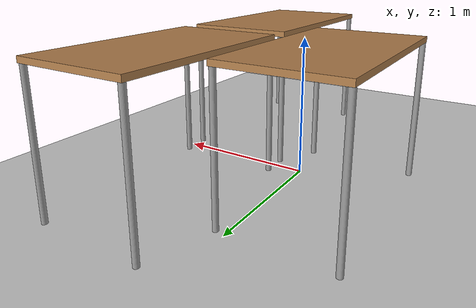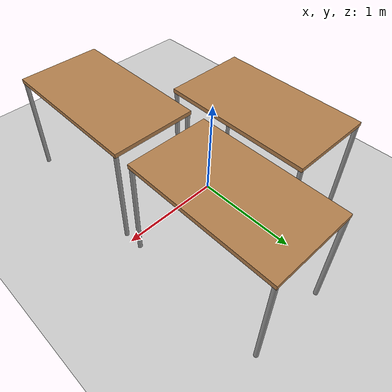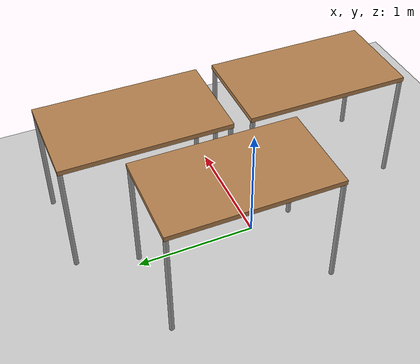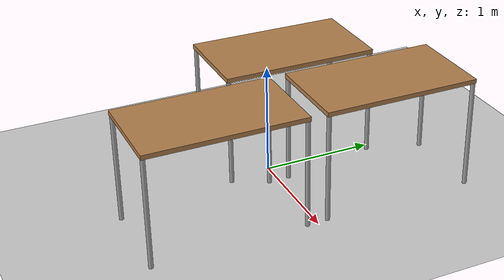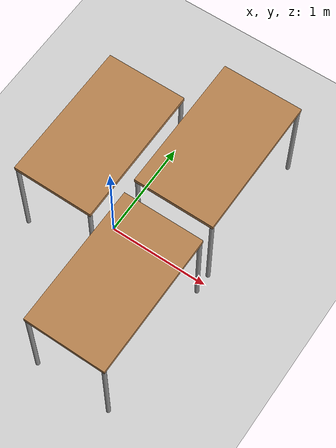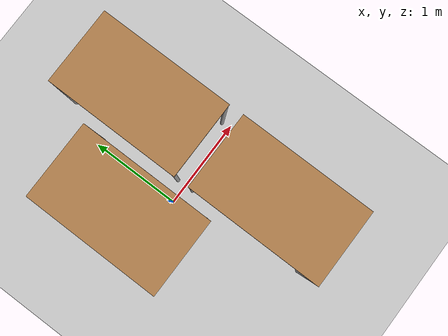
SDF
<sdf version="1.6">
 <world name="default">
  <light name="sun" type="directional">
   <pose>0 0 10 0 -0 0</pose>
   <diffuse>0.8 0.8 0.8 1</diffuse>
   <specular>0.1 0.1 0.1 1</specular>
   <attenuation>
    <range>1000</range>
    <constant>0.9</constant>
    <linear>0.01</linear>
    <quadratic>0.001</quadratic>
   </attenuation>
   <direction>-0.5 0.5 -1</direction>
  </light>
  <model name="ground_plane">
   <static>1</static>
   <link name="link">
    <collision name="collision">
     <geometry><plane><normal>0 0 1</normal><size>100 100</size></plane></geometry>
     <surface><friction><ode><mu>100</mu><mu2>50</mu2></ode></friction></surface>
    </collision>
    <visual name="visual">
     <cast_shadows>0</cast_shadows>
     <geometry><plane><normal>0 0 1</normal><size>100 100</size></plane></geometry>
     <material>
      <script><uri>file://media/materials/scripts/gazebo.material</uri><name>Gazebo/Grey</name></script>
     </material>
    </visual>
   </link>
  </model>
  <gravity>0 0 -9.8</gravity>
  <magnetic_field>6e-06 2.3e-05 -4.2e-05</magnetic_field>
  <atmosphere type="adiabatic"/>
  <physics name="default_physics" default="0" type="ode">
   <max_step_size>0.001</max_step_size>
   <real_time_factor>1</real_time_factor>
   <real_time_update_rate>1000</real_time_update_rate>
  </physics>
  <scene><ambient>0.4 0.4 0.4 1</ambient><background>0.7 0.7 0.7 1</background><shadows>1</shadows></scene>
  <spherical_coordinates>
   <surface_model>EARTH_WGS84</surface_model>
   <latitude_deg>0</latitude_deg>
   <longitude_deg>0</longitude_deg>
   <elevation>0</elevation>
   <heading_deg>0</heading_deg>
  </spherical_coordinates>
  <model name="table-heavy_3">
   <link name="link">
    <inertial>
     <inertia><ixx>0</ixx><ixy>0</ixy><ixz>0</ixz><iyy>0</iyy><iyz>0</iyz><izz>0</izz></inertia>
     <mass>100</mass>
    </inertial>
    <visual name="visual1">
     <pose>0 0 1 0 -0 0</pose>
     <geometry><box><size>1.4 0.8 0.04</size></box></geometry>
     <material>
      <script><uri>file://media/materials/scripts/gazebo.material</uri><name>Gazebo/Wood</name></script>
      <ambient>1 1 1 1</ambient>
      <diffuse>1 1 1 1</diffuse>
      <specular>0.2 0.2 0.2 1</specular>
      <emissive>0 0 0 1</emissive>
      <shader type="vertex"><normal_map>__default__</normal_map></shader>
     </material>
    </visual>
    <visual name="front_left_leg">
     <pose>0.68 0.38 0.5 0 -0 0</pose>
     <geometry><cylinder><radius>0.02</radius><length>1</length></cylinder></geometry>
     <material>
      <script><uri>file://media/materials/scripts/gazebo.material</uri><name>Gazebo/Grey</name></script>
      <ambient>0.3 0.3 0.3 1</ambient>
      <diffuse>0.7 0.7 0.7 1</diffuse>
      <specular>0.01 0.01 0.01 1</specular>
      <emissive>0 0 0 1</emissive>
      <shader type="vertex"><normal_map>__default__</normal_map></shader>
     </material>
    </visual>
    <visual name="front_right_leg">
     <pose>0.68 -0.38 0.5 0 -0 0</pose>
     <geometry><cylinder><radius>0.02</radius><length>1</length></cylinder></geometry>
     <material>
      <script><uri>file://media/materials/scripts/gazebo.material</uri><name>Gazebo/Grey</name></script>
      <ambient>0.3 0.3 0.3 1</ambient>
      <diffuse>0.7 0.7 0.7 1</diffuse>
      <specular>0.01 0.01 0.01 1</specular>
      <emissive>0 0 0 1</emissive>
      <shader type="vertex"><normal_map>__default__</normal_map></shader>
     </material>
    </visual>
    <visual name="back_right_leg">
     <pose>-0.68 -0.38 0.5 0 -0 0</pose>
     <geometry><cylinder><radius>0.02</radius><length>1</length></cylinder></geometry>
     <material>
      <script><uri>file://media/materials/scripts/gazebo.material</uri><name>Gazebo/Grey</name></script>
      <ambient>0.3 0.3 0.3 1</ambient>
      <diffuse>0.7 0.7 0.7 1</diffuse>
      <specular>0.01 0.01 0.01 1</specular>
      <emissive>0 0 0 1</emissive>
      <shader type="vertex"><normal_map>__default__</normal_map></shader>
     </material>
    </visual>
    <visual name="back_left_leg">
     <pose>-0.68 0.38 0.5 0 -0 0</pose>
     <geometry><cylinder><radius>0.02</radius><length>1</length></cylinder></geometry>
     <material>
      <script><uri>file://media/materials/scripts/gazebo.material</uri><name>Gazebo/Grey</name></script>
      <ambient>0.3 0.3 0.3 1</ambient>
      <diffuse>0.7 0.7 0.7 1</diffuse>
      <specular>0.01 0.01 0.01 1</specular>
      <emissive>0 0 0 1</emissive>
      <shader type="vertex"><normal_map>__default__</normal_map></shader>
     </material>
    </visual>
    <collision name="surface">
     <pose>0 0 1 0 -0 0</pose>
     <geometry><box><size>1.5 0.8 0.03</size></box></geometry>
     <surface>
      <friction>
       <ode><mu>0.6</mu><mu2>0.6</mu2><fdir1>0 0 0</fdir1><slip1>0</slip1><slip2>0</slip2></ode>
       <torsional>
        <coefficient>1</coefficient>
        <patch_radius>0</patch_radius>
        <surface_radius>0</surface_radius>
        <use_patch_radius>1</use_patch_radius>
        <ode><slip>0</slip></ode>
       </torsional>
      </friction>
      <bounce><restitution_coefficient>0</restitution_coefficient><threshold>1e+06</threshold></bounce>
      <contact>
       <collide_without_contact>0</collide_without_contact>
       <collide_without_contact_bitmask>1</collide_without_contact_bitmask>
       <collide_bitmask>1</collide_bitmask>
       <ode>
        <soft_cfm>0</soft_cfm>
        <soft_erp>0.2</soft_erp>
        <kp>1e+13</kp>
        <kd>1</kd>
        <max_vel>0.01</max_vel>
        <min_depth>0</min_depth>
       </ode>
       <bullet>
        <split_impulse>1</split_impulse>
        <split_impulse_penetration_threshold>-0.01</split_impulse_penetration_threshold>
        <soft_cfm>0</soft_cfm>
        <soft_erp>0.2</soft_erp>
        <kp>1e+13</kp>
        <kd>1</kd>
       </bullet>
      </contact>
     </surface>
    </collision>
    <collision name="front_left_leg">
     <pose>0.68 0.38 0.5 0 -0 0</pose>
     <geometry><cylinder><radius>0.02</radius><length>1</length></cylinder></geometry>
     <surface>
      <friction>
       <ode><mu>1</mu><mu2>1</mu2><fdir1>0 0 0</fdir1><slip1>0</slip1><slip2>0</slip2></ode>
       <torsional>
        <coefficient>1</coefficient>
        <patch_radius>0</patch_radius>
        <surface_radius>0</surface_radius>
        <use_patch_radius>1</use_patch_radius>
        <ode><slip>0</slip></ode>
       </torsional>
      </friction>
      <bounce><restitution_coefficient>0</restitution_coefficient><threshold>1e+06</threshold></bounce>
      <contact>
       <collide_without_contact>0</collide_without_contact>
       <collide_without_contact_bitmask>1</collide_without_contact_bitmask>
       <collide_bitmask>1</collide_bitmask>
       <ode>
        <soft_cfm>0</soft_cfm>
        <soft_erp>0.2</soft_erp>
        <kp>1e+13</kp>
        <kd>1</kd>
        <max_vel>0.01</max_vel>
        <min_depth>0</min_depth>
       </ode>
       <bullet>
        <split_impulse>1</split_impulse>
        <split_impulse_penetration_threshold>-0.01</split_impulse_penetration_threshold>
        <soft_cfm>0</soft_cfm>
        <soft_erp>0.2</soft_erp>
        <kp>1e+13</kp>
        <kd>1</kd>
       </bullet>
      </contact>
     </surface>
    </collision>
    <collision name="front_right_leg">
     <pose>0.68 -0.38 0.5 0 -0 0</pose>
     <geometry><cylinder><radius>0.02</radius><length>1</length></cylinder></geometry>
     <surface>
      <friction>
       <ode><mu>1</mu><mu2>1</mu2><fdir1>0 0 0</fdir1><slip1>0</slip1><slip2>0</slip2></ode>
       <torsional>
        <coefficient>1</coefficient>
        <patch_radius>0</patch_radius>
        <surface_radius>0</surface_radius>
        <use_patch_radius>1</use_patch_radius>
        <ode><slip>0</slip></ode>
       </torsional>
      </friction>
      <bounce><restitution_coefficient>0</restitution_coefficient><threshold>1e+06</threshold></bounce>
      <contact>
       <collide_without_contact>0</collide_without_contact>
       <collide_without_contact_bitmask>1</collide_without_contact_bitmask>
       <collide_bitmask>1</collide_bitmask>
       <ode>
        <soft_cfm>0</soft_cfm>
        <soft_erp>0.2</soft_erp>
        <kp>1e+13</kp>
        <kd>1</kd>
        <max_vel>0.01</max_vel>
        <min_depth>0</min_depth>
       </ode>
       <bullet>
        <split_impulse>1</split_impulse>
        <split_impulse_penetration_threshold>-0.01</split_impulse_penetration_threshold>
        <soft_cfm>0</soft_cfm>
        <soft_erp>0.2</soft_erp>
        <kp>1e+13</kp>
        <kd>1</kd>
       </bullet>
      </contact>
     </surface>
    </collision>
    <collision name="back_left_leg">
     <pose>-0.68 0.38 0.5 0 -0 0</pose>
     <geometry><cylinder><radius>0.02</radius><length>1</length></cylinder></geometry>
     <surface>
      <friction>
       <ode><mu>1</mu><mu2>1</mu2><fdir1>0 0 0</fdir1><slip1>0</slip1><slip2>0</slip2></ode>
       <torsional>
        <coefficient>1</coefficient>
        <patch_radius>0</patch_radius>
        <surface_radius>0</surface_radius>
        <use_patch_radius>1</use_patch_radius>
        <ode><slip>0</slip></ode>
       </torsional>
      </friction>
      <bounce><restitution_coefficient>0</restitution_coefficient><threshold>1e+06</threshold></bounce>
      <contact>
       <collide_without_contact>0</collide_without_contact>
       <collide_without_contact_bitmask>1</collide_without_contact_bitmask>
       <collide_bitmask>1</collide_bitmask>
       <ode>
        <soft_cfm>0</soft_cfm>
        <soft_erp>0.2</soft_erp>
        <kp>1e+13</kp>
        <kd>1</kd>
        <max_vel>0.01</max_vel>
        <min_depth>0</min_depth>
       </ode>
       <bullet>
        <split_impulse>1</split_impulse>
        <split_impulse_penetration_threshold>-0.01</split_impulse_penetration_threshold>
        <soft_cfm>0</soft_cfm>
        <soft_erp>0.2</soft_erp>
        <kp>1e+13</kp>
        <kd>1</kd>
       </bullet>
      </contact>
     </surface>
    </collision>
    <collision name="back_right_leg">
     <pose>-0.68 -0.38 0.5 0 -0 0</pose>
     <geometry><cylinder><radius>0.02</radius><length>1</length></cylinder></geometry>
     <surface>
      <friction>
       <ode><mu>1</mu><mu2>1</mu2><fdir1>0 0 0</fdir1><slip1>0</slip1><slip2>0</slip2></ode>
       <torsional>
        <coefficient>1</coefficient>
        <patch_radius>0</patch_radius>
        <surface_radius>0</surface_radius>
        <use_patch_radius>1</use_patch_radius>
        <ode><slip>0</slip></ode>
       </torsional>
      </friction>
      <bounce><restitution_coefficient>0</restitution_coefficient><threshold>1e+06</threshold></bounce>
      <contact>
       <collide_without_contact>0</collide_without_contact>
       <collide_without_contact_bitmask>1</collide_without_contact_bitmask>
       <collide_bitmask>1</collide_bitmask>
       <ode>
        <soft_cfm>0</soft_cfm>
        <soft_erp>0.2</soft_erp>
        <kp>1e+13</kp>
        <kd>1</kd>
        <max_vel>0.01</max_vel>
        <min_depth>0</min_depth>
       </ode>
       <bullet>
        <split_impulse>1</split_impulse>
        <split_impulse_penetration_threshold>-0.01</split_impulse_penetration_threshold>
        <soft_cfm>0</soft_cfm>
        <soft_erp>0.2</soft_erp>
        <kp>1e+13</kp>
        <kd>1</kd>
       </bullet>
      </contact>
     </surface>
    </collision>
   </link>
   <static>0</static>
   <pose>0.592698 -0.768492 -2e-06 0 -4e-06 -1.5761</pose>
  </model>
  <model name="table-heavy_3_clone">
   <link name="link">
    <inertial>
     <inertia><ixx>0</ixx><ixy>0</ixy><ixz>0</ixz><iyy>0</iyy><iyz>0</iyz><izz>0</izz></inertia>
     <mass>100</mass>
    </inertial>
    <visual name="visual1">
     <pose>0 0 1 0 -0 0</pose>
     <geometry><box><size>1.4 0.8 0.04</size></box></geometry>
     <material>
      <script><uri>file://media/materials/scripts/gazebo.material</uri><name>Gazebo/Wood</name></script>
      <ambient>1 1 1 1</ambient>
      <diffuse>1 1 1 1</diffuse>
      <specular>0.2 0.2 0.2 1</specular>
      <emissive>0 0 0 1</emissive>
      <shader type="vertex"><normal_map>__default__</normal_map></shader>
     </material>
    </visual>
    <visual name="front_left_leg">
     <pose>0.68 0.38 0.5 0 -0 0</pose>
     <geometry><cylinder><radius>0.02</radius><length>1</length></cylinder></geometry>
     <material>
      <script><uri>file://media/materials/scripts/gazebo.material</uri><name>Gazebo/Grey</name></script>
      <ambient>0.3 0.3 0.3 1</ambient>
      <diffuse>0.7 0.7 0.7 1</diffuse>
      <specular>0.01 0.01 0.01 1</specular>
      <emissive>0 0 0 1</emissive>
      <shader type="vertex"><normal_map>__default__</normal_map></shader>
     </material>
    </visual>
    <visual name="front_right_leg">
     <pose>0.68 -0.38 0.5 0 -0 0</pose>
     <geometry><cylinder><radius>0.02</radius><length>1</length></cylinder></geometry>
     <material>
      <script><uri>file://media/materials/scripts/gazebo.material</uri><name>Gazebo/Grey</name></script>
      <ambient>0.3 0.3 0.3 1</ambient>
      <diffuse>0.7 0.7 0.7 1</diffuse>
      <specular>0.01 0.01 0.01 1</specular>
      <emissive>0 0 0 1</emissive>
      <shader type="vertex"><normal_map>__default__</normal_map></shader>
     </material>
    </visual>
    <visual name="back_right_leg">
     <pose>-0.68 -0.38 0.5 0 -0 0</pose>
     <geometry><cylinder><radius>0.02</radius><length>1</length></cylinder></geometry>
     <material>
      <script><uri>file://media/materials/scripts/gazebo.material</uri><name>Gazebo/Grey</name></script>
      <ambient>0.3 0.3 0.3 1</ambient>
      <diffuse>0.7 0.7 0.7 1</diffuse>
      <specular>0.01 0.01 0.01 1</specular>
      <emissive>0 0 0 1</emissive>
      <shader type="vertex"><normal_map>__default__</normal_map></shader>
     </material>
    </visual>
    <visual name="back_left_leg">
     <pose>-0.68 0.38 0.5 0 -0 0</pose>
     <geometry><cylinder><radius>0.02</radius><length>1</length></cylinder></geometry>
     <material>
      <script><uri>file://media/materials/scripts/gazebo.material</uri><name>Gazebo/Grey</name></script>
      <ambient>0.3 0.3 0.3 1</ambient>
      <diffuse>0.7 0.7 0.7 1</diffuse>
      <specular>0.01 0.01 0.01 1</specular>
      <emissive>0 0 0 1</emissive>
      <shader type="vertex"><normal_map>__default__</normal_map></shader>
     </material>
    </visual>
    <collision name="surface">
     <pose>0 0 1 0 -0 0</pose>
     <geometry><box><size>1.5 0.8 0.03</size></box></geometry>
     <surface>
      <friction>
       <ode><mu>0.6</mu><mu2>0.6</mu2><fdir1>0 0 0</fdir1><slip1>0</slip1><slip2>0</slip2></ode>
       <torsional>
        <coefficient>1</coefficient>
        <patch_radius>0</patch_radius>
        <surface_radius>0</surface_radius>
        <use_patch_radius>1</use_patch_radius>
        <ode><slip>0</slip></ode>
       </torsional>
      </friction>
      <bounce><restitution_coefficient>0</restitution_coefficient><threshold>1e+06</threshold></bounce>
      <contact>
       <collide_without_contact>0</collide_without_contact>
       <collide_without_contact_bitmask>1</collide_without_contact_bitmask>
       <collide_bitmask>1</collide_bitmask>
       <ode>
        <soft_cfm>0</soft_cfm>
        <soft_erp>0.2</soft_erp>
        <kp>1e+13</kp>
        <kd>1</kd>
        <max_vel>0.01</max_vel>
        <min_depth>0</min_depth>
       </ode>
       <bullet>
        <split_impulse>1</split_impulse>
        <split_impulse_penetration_threshold>-0.01</split_impulse_penetration_threshold>
        <soft_cfm>0</soft_cfm>
        <soft_erp>0.2</soft_erp>
        <kp>1e+13</kp>
        <kd>1</kd>
       </bullet>
      </contact>
     </surface>
    </collision>
    <collision name="front_left_leg">
     <pose>0.68 0.38 0.5 0 -0 0</pose>
     <geometry><cylinder><radius>0.02</radius><length>1</length></cylinder></geometry>
     <surface>
      <friction>
       <ode><mu>1</mu><mu2>1</mu2><fdir1>0 0 0</fdir1><slip1>0</slip1><slip2>0</slip2></ode>
       <torsional>
        <coefficient>1</coefficient>
        <patch_radius>0</patch_radius>
        <surface_radius>0</surface_radius>
        <use_patch_radius>1</use_patch_radius>
        <ode><slip>0</slip></ode>
       </torsional>
      </friction>
      <bounce><restitution_coefficient>0</restitution_coefficient><threshold>1e+06</threshold></bounce>
      <contact>
       <collide_without_contact>0</collide_without_contact>
       <collide_without_contact_bitmask>1</collide_without_contact_bitmask>
       <collide_bitmask>1</collide_bitmask>
       <ode>
        <soft_cfm>0</soft_cfm>
        <soft_erp>0.2</soft_erp>
        <kp>1e+13</kp>
        <kd>1</kd>
        <max_vel>0.01</max_vel>
        <min_depth>0</min_depth>
       </ode>
       <bullet>
        <split_impulse>1</split_impulse>
        <split_impulse_penetration_threshold>-0.01</split_impulse_penetration_threshold>
        <soft_cfm>0</soft_cfm>
        <soft_erp>0.2</soft_erp>
        <kp>1e+13</kp>
        <kd>1</kd>
       </bullet>
      </contact>
     </surface>
    </collision>
    <collision name="front_right_leg">
     <pose>0.68 -0.38 0.5 0 -0 0</pose>
     <geometry><cylinder><radius>0.02</radius><length>1</length></cylinder></geometry>
     <surface>
      <friction>
       <ode><mu>1</mu><mu2>1</mu2><fdir1>0 0 0</fdir1><slip1>0</slip1><slip2>0</slip2></ode>
       <torsional>
        <coefficient>1</coefficient>
        <patch_radius>0</patch_radius>
        <surface_radius>0</surface_radius>
        <use_patch_radius>1</use_patch_radius>
        <ode><slip>0</slip></ode>
       </torsional>
      </friction>
      <bounce><restitution_coefficient>0</restitution_coefficient><threshold>1e+06</threshold></bounce>
      <contact>
       <collide_without_contact>0</collide_without_contact>
       <collide_without_contact_bitmask>1</collide_without_contact_bitmask>
       <collide_bitmask>1</collide_bitmask>
       <ode>
        <soft_cfm>0</soft_cfm>
        <soft_erp>0.2</soft_erp>
        <kp>1e+13</kp>
        <kd>1</kd>
        <max_vel>0.01</max_vel>
        <min_depth>0</min_depth>
       </ode>
       <bullet>
        <split_impulse>1</split_impulse>
        <split_impulse_penetration_threshold>-0.01</split_impulse_penetration_threshold>
        <soft_cfm>0</soft_cfm>
        <soft_erp>0.2</soft_erp>
        <kp>1e+13</kp>
        <kd>1</kd>
       </bullet>
      </contact>
     </surface>
    </collision>
    <collision name="back_left_leg">
     <pose>-0.68 0.38 0.5 0 -0 0</pose>
     <geometry><cylinder><radius>0.02</radius><length>1</length></cylinder></geometry>
     <surface>
      <friction>
       <ode><mu>1</mu><mu2>1</mu2><fdir1>0 0 0</fdir1><slip1>0</slip1><slip2>0</slip2></ode>
       <torsional>
        <coefficient>1</coefficient>
        <patch_radius>0</patch_radius>
        <surface_radius>0</surface_radius>
        <use_patch_radius>1</use_patch_radius>
        <ode><slip>0</slip></ode>
       </torsional>
      </friction>
      <bounce><restitution_coefficient>0</restitution_coefficient><threshold>1e+06</threshold></bounce>
      <contact>
       <collide_without_contact>0</collide_without_contact>
       <collide_without_contact_bitmask>1</collide_without_contact_bitmask>
       <collide_bitmask>1</collide_bitmask>
       <ode>
        <soft_cfm>0</soft_cfm>
        <soft_erp>0.2</soft_erp>
        <kp>1e+13</kp>
        <kd>1</kd>
        <max_vel>0.01</max_vel>
        <min_depth>0</min_depth>
       </ode>
       <bullet>
        <split_impulse>1</split_impulse>
        <split_impulse_penetration_threshold>-0.01</split_impulse_penetration_threshold>
        <soft_cfm>0</soft_cfm>
        <soft_erp>0.2</soft_erp>
        <kp>1e+13</kp>
        <kd>1</kd>
       </bullet>
      </contact>
     </surface>
    </collision>
    <collision name="back_right_leg">
     <pose>-0.68 -0.38 0.5 0 -0 0</pose>
     <geometry><cylinder><radius>0.02</radius><length>1</length></cylinder></geometry>
     <surface>
      <friction>
       <ode><mu>1</mu><mu2>1</mu2><fdir1>0 0 0</fdir1><slip1>0</slip1><slip2>0</slip2></ode>
       <torsional>
        <coefficient>1</coefficient>
        <patch_radius>0</patch_radius>
        <surface_radius>0</surface_radius>
        <use_patch_radius>1</use_patch_radius>
        <ode><slip>0</slip></ode>
       </torsional>
      </friction>
      <bounce><restitution_coefficient>0</restitution_coefficient><threshold>1e+06</threshold></bounce>
      <contact>
       <collide_without_contact>0</collide_without_contact>
       <collide_without_contact_bitmask>1</collide_without_contact_bitmask>
       <collide_bitmask>1</collide_bitmask>
       <ode>
        <soft_cfm>0</soft_cfm>
        <soft_erp>0.2</soft_erp>
        <kp>1e+13</kp>
        <kd>1</kd>
        <max_vel>0.01</max_vel>
        <min_depth>0</min_depth>
       </ode>
       <bullet>
        <split_impulse>1</split_impulse>
        <split_impulse_penetration_threshold>-0.01</split_impulse_penetration_threshold>
        <soft_cfm>0</soft_cfm>
        <soft_erp>0.2</soft_erp>
        <kp>1e+13</kp>
        <kd>1</kd>
       </bullet>
      </contact>
     </surface>
    </collision>
   </link>
   <static>0</static>
   <pose>0.597394 0.77935 -3.4e-05 -0 -5.2e-05 -1.57626</pose>
  </model>
  <model name="table-heavy_3_clone_0">
   <link name="link">
    <inertial>
     <inertia><ixx>0</ixx><ixy>0</ixy><ixz>0</ixz><iyy>0</iyy><iyz>0</iyz><izz>0</izz></inertia>
     <mass>100</mass>
    </inertial>
    <visual name="visual1">
     <pose>0 0 1 0 -0 0</pose>
     <geometry><box><size>1.4 0.8 0.04</size></box></geometry>
     <material>
      <script><uri>file://media/materials/scripts/gazebo.material</uri><name>Gazebo/Wood</name></script>
      <ambient>1 1 1 1</ambient>
      <diffuse>1 1 1 1</diffuse>
      <specular>0.2 0.2 0.2 1</specular>
      <emissive>0 0 0 1</emissive>
      <shader type="vertex"><normal_map>__default__</normal_map></shader>
     </material>
    </visual>
    <visual name="front_left_leg">
     <pose>0.68 0.38 0.5 0 -0 0</pose>
     <geometry><cylinder><radius>0.02</radius><length>1</length></cylinder></geometry>
     <material>
      <script><uri>file://media/materials/scripts/gazebo.material</uri><name>Gazebo/Grey</name></script>
      <ambient>0.3 0.3 0.3 1</ambient>
      <diffuse>0.7 0.7 0.7 1</diffuse>
      <specular>0.01 0.01 0.01 1</specular>
      <emissive>0 0 0 1</emissive>
      <shader type="vertex"><normal_map>__default__</normal_map></shader>
     </material>
    </visual>
    <visual name="front_right_leg">
     <pose>0.68 -0.38 0.5 0 -0 0</pose>
     <geometry><cylinder><radius>0.02</radius><length>1</length></cylinder></geometry>
     <material>
      <script><uri>file://media/materials/scripts/gazebo.material</uri><name>Gazebo/Grey</name></script>
      <ambient>0.3 0.3 0.3 1</ambient>
      <diffuse>0.7 0.7 0.7 1</diffuse>
      <specular>0.01 0.01 0.01 1</specular>
      <emissive>0 0 0 1</emissive>
      <shader type="vertex"><normal_map>__default__</normal_map></shader>
     </material>
    </visual>
    <visual name="back_right_leg">
     <pose>-0.68 -0.38 0.5 0 -0 0</pose>
     <geometry><cylinder><radius>0.02</radius><length>1</length></cylinder></geometry>
     <material>
      <script><uri>file://media/materials/scripts/gazebo.material</uri><name>Gazebo/Grey</name></script>
      <ambient>0.3 0.3 0.3 1</ambient>
      <diffuse>0.7 0.7 0.7 1</diffuse>
      <specular>0.01 0.01 0.01 1</specular>
      <emissive>0 0 0 1</emissive>
      <shader type="vertex"><normal_map>__default__</normal_map></shader>
     </material>
    </visual>
    <visual name="back_left_leg">
     <pose>-0.68 0.38 0.5 0 -0 0</pose>
     <geometry><cylinder><radius>0.02</radius><length>1</length></cylinder></geometry>
     <material>
      <script><uri>file://media/materials/scripts/gazebo.material</uri><name>Gazebo/Grey</name></script>
      <ambient>0.3 0.3 0.3 1</ambient>
      <diffuse>0.7 0.7 0.7 1</diffuse>
      <specular>0.01 0.01 0.01 1</specular>
      <emissive>0 0 0 1</emissive>
      <shader type="vertex"><normal_map>__default__</normal_map></shader>
     </material>
    </visual>
    <collision name="surface">
     <pose>0 0 1 0 -0 0</pose>
     <geometry><box><size>1.5 0.8 0.03</size></box></geometry>
     <surface>
      <friction>
       <ode><mu>0.6</mu><mu2>0.6</mu2><fdir1>0 0 0</fdir1><slip1>0</slip1><slip2>0</slip2></ode>
       <torsional>
        <coefficient>1</coefficient>
        <patch_radius>0</patch_radius>
        <surface_radius>0</surface_radius>
        <use_patch_radius>1</use_patch_radius>
        <ode><slip>0</slip></ode>
       </torsional>
      </friction>
      <bounce><restitution_coefficient>0</restitution_coefficient><threshold>1e+06</threshold></bounce>
      <contact>
       <collide_without_contact>0</collide_without_contact>
       <collide_without_contact_bitmask>1</collide_without_contact_bitmask>
       <collide_bitmask>1</collide_bitmask>
       <ode>
        <soft_cfm>0</soft_cfm>
        <soft_erp>0.2</soft_erp>
        <kp>1e+13</kp>
        <kd>1</kd>
        <max_vel>0.01</max_vel>
        <min_depth>0</min_depth>
       </ode>
       <bullet>
        <split_impulse>1</split_impulse>
        <split_impulse_penetration_threshold>-0.01</split_impulse_penetration_threshold>
        <soft_cfm>0</soft_cfm>
        <soft_erp>0.2</soft_erp>
        <kp>1e+13</kp>
        <kd>1</kd>
       </bullet>
      </contact>
     </surface>
    </collision>
    <collision name="front_left_leg">
     <pose>0.68 0.38 0.5 0 -0 0</pose>
     <geometry><cylinder><radius>0.02</radius><length>1</length></cylinder></geometry>
     <surface>
      <friction>
       <ode><mu>1</mu><mu2>1</mu2><fdir1>0 0 0</fdir1><slip1>0</slip1><slip2>0</slip2></ode>
       <torsional>
        <coefficient>1</coefficient>
        <patch_radius>0</patch_radius>
        <surface_radius>0</surface_radius>
        <use_patch_radius>1</use_patch_radius>
        <ode><slip>0</slip></ode>
       </torsional>
      </friction>
      <bounce><restitution_coefficient>0</restitution_coefficient><threshold>1e+06</threshold></bounce>
      <contact>
       <collide_without_contact>0</collide_without_contact>
       <collide_without_contact_bitmask>1</collide_without_contact_bitmask>
       <collide_bitmask>1</collide_bitmask>
       <ode>
        <soft_cfm>0</soft_cfm>
        <soft_erp>0.2</soft_erp>
        <kp>1e+13</kp>
        <kd>1</kd>
        <max_vel>0.01</max_vel>
        <min_depth>0</min_depth>
       </ode>
       <bullet>
        <split_impulse>1</split_impulse>
        <split_impulse_penetration_threshold>-0.01</split_impulse_penetration_threshold>
        <soft_cfm>0</soft_cfm>
        <soft_erp>0.2</soft_erp>
        <kp>1e+13</kp>
        <kd>1</kd>
       </bullet>
      </contact>
     </surface>
    </collision>
    <collision name="front_right_leg">
     <pose>0.68 -0.38 0.5 0 -0 0</pose>
     <geometry><cylinder><radius>0.02</radius><length>1</length></cylinder></geometry>
     <surface>
      <friction>
       <ode><mu>1</mu><mu2>1</mu2><fdir1>0 0 0</fdir1><slip1>0</slip1><slip2>0</slip2></ode>
       <torsional>
        <coefficient>1</coefficient>
        <patch_radius>0</patch_radius>
        <surface_radius>0</surface_radius>
        <use_patch_radius>1</use_patch_radius>
        <ode><slip>0</slip></ode>
       </torsional>
      </friction>
      <bounce><restitution_coefficient>0</restitution_coefficient><threshold>1e+06</threshold></bounce>
      <contact>
       <collide_without_contact>0</collide_without_contact>
       <collide_without_contact_bitmask>1</collide_without_contact_bitmask>
       <collide_bitmask>1</collide_bitmask>
       <ode>
        <soft_cfm>0</soft_cfm>
        <soft_erp>0.2</soft_erp>
        <kp>1e+13</kp>
        <kd>1</kd>
        <max_vel>0.01</max_vel>
        <min_depth>0</min_depth>
       </ode>
       <bullet>
        <split_impulse>1</split_impulse>
        <split_impulse_penetration_threshold>-0.01</split_impulse_penetration_threshold>
        <soft_cfm>0</soft_cfm>
        <soft_erp>0.2</soft_erp>
        <kp>1e+13</kp>
        <kd>1</kd>
       </bullet>
      </contact>
     </surface>
    </collision>
    <collision name="back_left_leg">
     <pose>-0.68 0.38 0.5 0 -0 0</pose>
     <geometry><cylinder><radius>0.02</radius><length>1</length></cylinder></geometry>
     <surface>
      <friction>
       <ode><mu>1</mu><mu2>1</mu2><fdir1>0 0 0</fdir1><slip1>0</slip1><slip2>0</slip2></ode>
       <torsional>
        <coefficient>1</coefficient>
        <patch_radius>0</patch_radius>
        <surface_radius>0</surface_radius>
        <use_patch_radius>1</use_patch_radius>
        <ode><slip>0</slip></ode>
       </torsional>
      </friction>
      <bounce><restitution_coefficient>0</restitution_coefficient><threshold>1e+06</threshold></bounce>
      <contact>
       <collide_without_contact>0</collide_without_contact>
       <collide_without_contact_bitmask>1</collide_without_contact_bitmask>
       <collide_bitmask>1</collide_bitmask>
       <ode>
        <soft_cfm>0</soft_cfm>
        <soft_erp>0.2</soft_erp>
        <kp>1e+13</kp>
        <kd>1</kd>
        <max_vel>0.01</max_vel>
        <min_depth>0</min_depth>
       </ode>
       <bullet>
        <split_impulse>1</split_impulse>
        <split_impulse_penetration_threshold>-0.01</split_impulse_penetration_threshold>
        <soft_cfm>0</soft_cfm>
        <soft_erp>0.2</soft_erp>
        <kp>1e+13</kp>
        <kd>1</kd>
       </bullet>
      </contact>
     </surface>
    </collision>
    <collision name="back_right_leg">
     <pose>-0.68 -0.38 0.5 0 -0 0</pose>
     <geometry><cylinder><radius>0.02</radius><length>1</length></cylinder></geometry>
     <surface>
      <friction>
       <ode><mu>1</mu><mu2>1</mu2><fdir1>0 0 0</fdir1><slip1>0</slip1><slip2>0</slip2></ode>
       <torsional>
        <coefficient>1</coefficient>
        <patch_radius>0</patch_radius>
        <surface_radius>0</surface_radius>
        <use_patch_radius>1</use_patch_radius>
        <ode><slip>0</slip></ode>
       </torsional>
      </friction>
      <bounce><restitution_coefficient>0</restitution_coefficient><threshold>1e+06</threshold></bounce>
      <contact>
       <collide_without_contact>0</collide_without_contact>
       <collide_without_contact_bitmask>1</collide_without_contact_bitmask>
       <collide_bitmask>1</collide_bitmask>
       <ode>
        <soft_cfm>0</soft_cfm>
        <soft_erp>0.2</soft_erp>
        <kp>1e+13</kp>
        <kd>1</kd>
        <max_vel>0.01</max_vel>
        <min_depth>0</min_depth>
       </ode>
       <bullet>
        <split_impulse>1</split_impulse>
        <split_impulse_penetration_threshold>-0.01</split_impulse_penetration_threshold>
        <soft_cfm>0</soft_cfm>
        <soft_erp>0.2</soft_erp>
        <kp>1e+13</kp>
        <kd>1</kd>
       </bullet>
      </contact>
     </surface>
    </collision>
   </link>
   <static>0</static>
   <pose>-0.312995 0.299513 0 0 0 -1.57691</pose>
  </model>
 </world>
</sdf>
